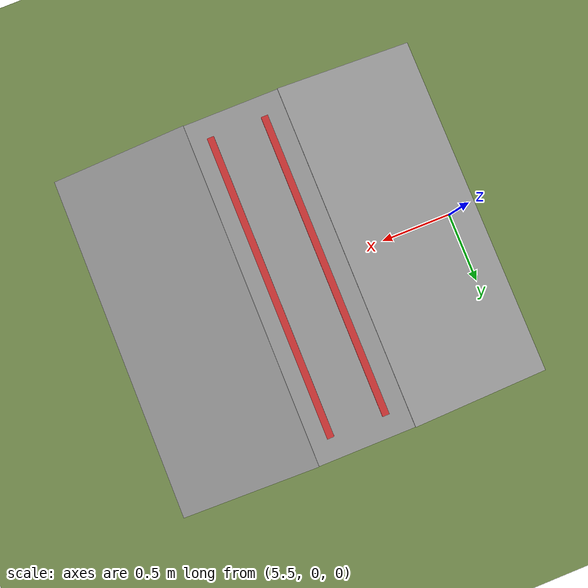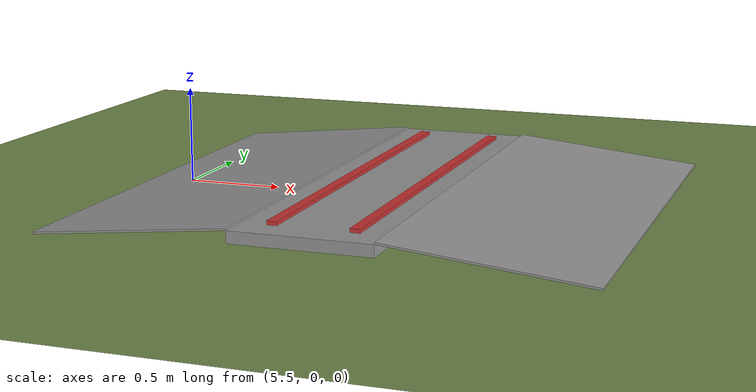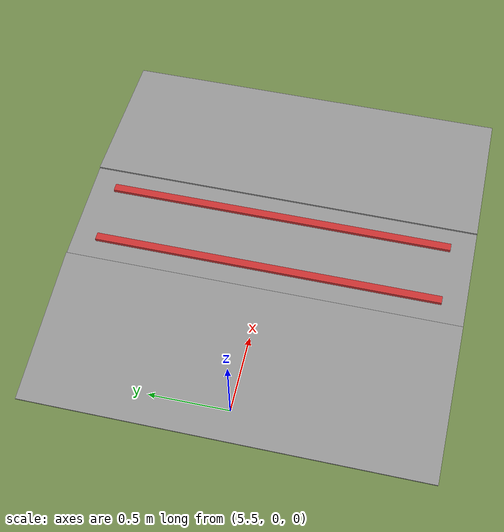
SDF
<sdf version="1.6">
 <world name="default">
  <plugin filename="gz-sim-physics-system" name="gz::sim::systems::Physics">
   <engine><filename>libgz-physics-dartsim-plugin.so</filename></engine>
  </plugin>
  <plugin filename="gz-sim-user-commands-system" name="gz::sim::systems::UserCommands"/>
  <plugin filename="gz-sim-scene-broadcaster-system" name="gz::sim::systems::SceneBroadcaster"/>
  <plugin filename="gz-sim-sensors-system" name="gz::sim::systems::Sensors">
   <render_engine>ogre2</render_engine>
  </plugin>
  <plugin filename="gz-sim-imu-system" name="gz::sim::systems::Imu"/>
  <plugin filename="gz-sim-navsat-system" name="gz::sim::systems::NavSat"/>
  <gravity>0.0 0.0 -9.8</gravity>
  <physics name="8ms" type="dartsim">
   <max_step_size>0.008</max_step_size>
   <real_time_factor>1.0</real_time_factor>
  </physics>
  <scene>
   <ambient>0.7 0.7 0.7 1</ambient>
   <background>0.6 0.75 0.9 1</background>
   <shadows>false</shadows>
   <grid>false</grid>
   <origin_visual>false</origin_visual>
  </scene>
  <spherical_coordinates>
   <surface_model>EARTH_WGS84</surface_model>
   <world_frame_orientation>ENU</world_frame_orientation>
   <latitude_deg>21.028511</latitude_deg>
   <longitude_deg>105.804817</longitude_deg>
   <elevation>10</elevation>
   <heading_deg>0</heading_deg>
  </spherical_coordinates>
  <model name="ground_plane">
   <static>true</static>
   <link name="link">
    <collision name="collision">
     <geometry><plane><normal>0 0 1</normal><size>200 200</size></plane></geometry>
     <surface><friction><torsional><coefficient>0.0</coefficient></torsional></friction></surface>
    </collision>
    <visual name="visual">
     <geometry><plane><normal>0 0 1</normal><size>200 200</size></plane></geometry>
     <material>
      <ambient>0.45 0.55 0.3 1</ambient>
      <diffuse>0.45 0.55 0.3 1</diffuse>
      <specular>0.05 0.05 0.05 1</specular>
     </material>
    </visual>
   </link>
  </model>
  <model name="small_ramp_up">
   <static>true</static>
   <pose>5.797260948 0 0.057236841 0 -0.10471975512 0</pose>
   <link name="link">
    <collision name="collision"><geometry><box><size>1.0 2.5 0.01</size></box></geometry></collision>
    <visual name="visual">
     <geometry><box><size>1.0 2.5 0.01</size></box></geometry>
     <material><ambient>0.6 0.6 0.6 1</ambient><diffuse>0.6 0.6 0.6 1</diffuse></material>
    </visual>
   </link>
  </model>
  <model name="small_ramp_platform">
   <static>true</static>
   <pose>6.644522 0 0.074528 0 0 0</pose>
   <link name="link">
    <collision name="collision"><geometry><box><size>0.7 2.5 0.06</size></box></geometry></collision>
    <visual name="visual">
     <geometry><box><size>0.7 2.5 0.06</size></box></geometry>
     <material><ambient>0.6 0.6 0.6 1</ambient><diffuse>0.6 0.6 0.6 1</diffuse></material>
    </visual>
   </link>
  </model>
  <model name="ridge_1">
   <static>true</static>
   <pose>6.45 0 0.114528 0 0 0</pose>
   <link name="link">
    <collision name="collision"><geometry><box><size>0.05 2.2 0.02</size></box></geometry></collision>
    <visual name="visual">
     <geometry><box><size>0.05 2.2 0.02</size></box></geometry>
     <material><ambient>0.8 0.2 0.2 1</ambient><diffuse>0.8 0.2 0.2 1</diffuse></material>
    </visual>
   </link>
  </model>
  <model name="ridge_2">
   <static>true</static>
   <pose>6.85 0 0.114528 0 0 0</pose>
   <link name="link">
    <collision name="collision"><geometry><box><size>0.05 2.2 0.02</size></box></geometry></collision>
    <visual name="visual">
     <geometry><box><size>0.05 2.2 0.02</size></box></geometry>
     <material><ambient>0.8 0.2 0.2 1</ambient><diffuse>0.8 0.2 0.2 1</diffuse></material>
    </visual>
   </link>
  </model>
  <model name="small_ramp_down">
   <static>true</static>
   <pose>7.491782843 0 0.057236841 0 0.10471975512 0</pose>
   <link name="link">
    <collision name="collision"><geometry><box><size>1.0 2.5 0.01</size></box></geometry></collision>
    <visual name="visual">
     <geometry><box><size>1.0 2.5 0.01</size></box></geometry>
     <material><ambient>0.6 0.6 0.6 1</ambient><diffuse>0.6 0.6 0.6 1</diffuse></material>
    </visual>
   </link>
  </model>
  <light name="sun" type="directional">
   <pose>0 0 10 0 -0 0</pose>
   <diffuse>0.8 0.8 0.8 1</diffuse>
   <specular>0.2 0.2 0.2 1</specular>
   <attenuation>
    <range>1000</range>
    <constant>0.9</constant>
    <linear>0.01</linear>
    <quadratic>0.001</quadratic>
   </attenuation>
   <direction>-0.5 0.1 -0.9</direction>
  </light>
 </world>
</sdf>
